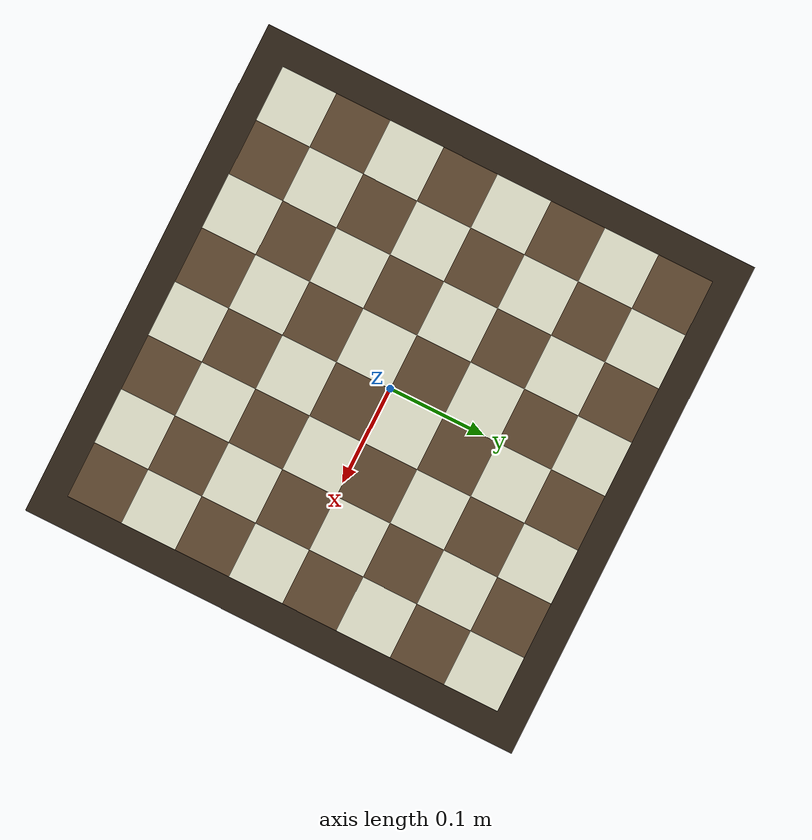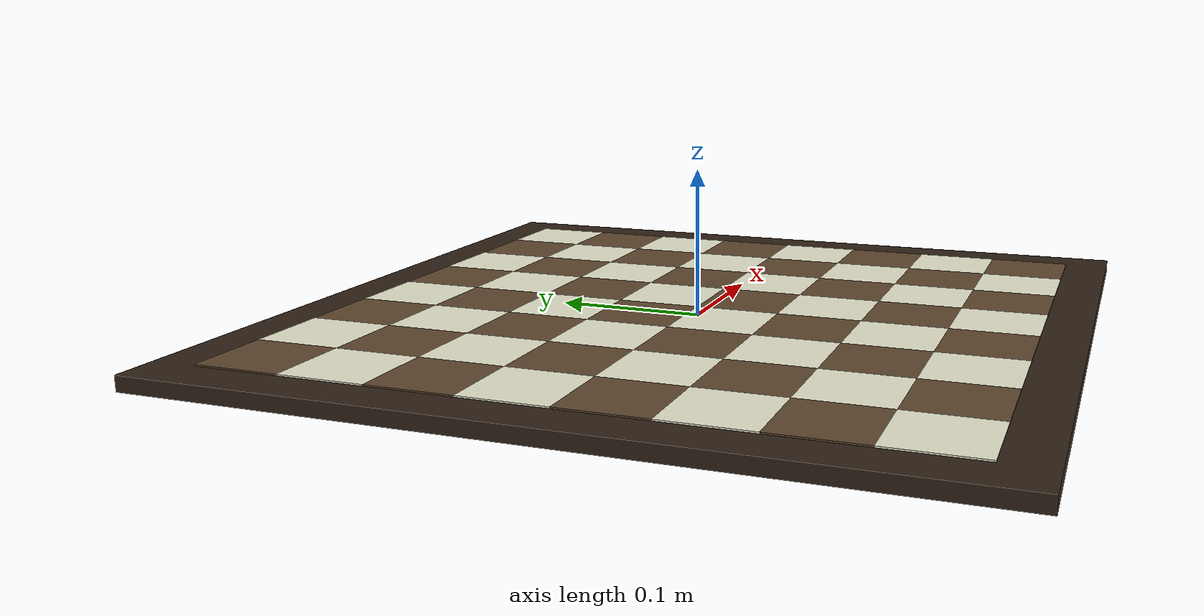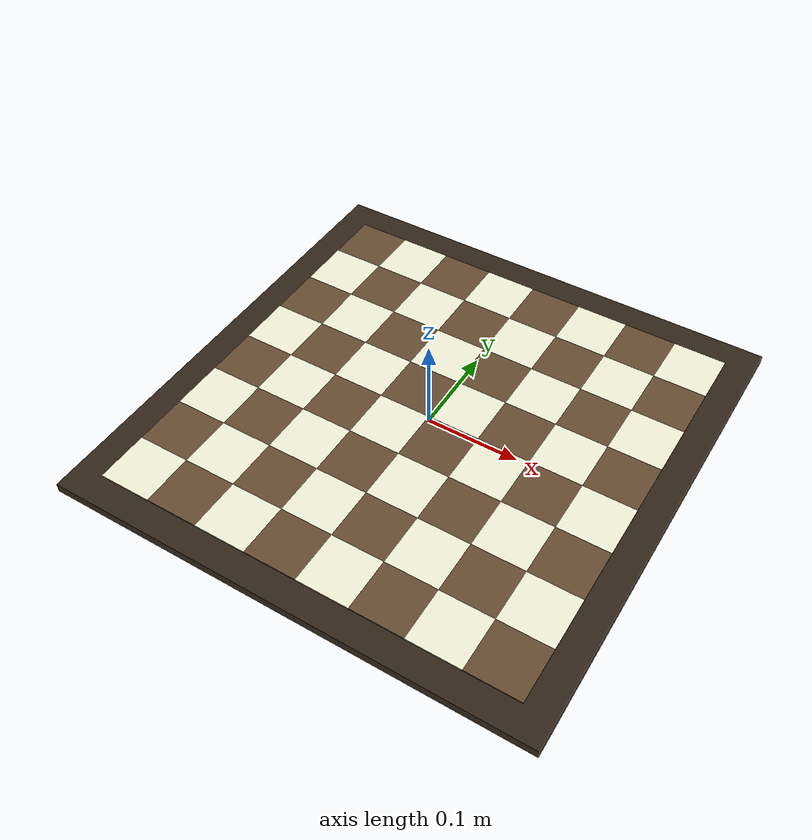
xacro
<?xml version="1.0"?>
<robot xmlns:xacro="http://www.ros.org/wiki/xacro" name="chessboard">

  <!-- Chessboard properties (standard tournament size) -->
  <xacro:property name="square_size" value="0.057"/>  <!-- 57mm squares -->
  <xacro:property name="board_size" value="${8 * square_size}"/>  <!-- 456mm total -->
  <xacro:property name="board_thickness" value="0.01"/>  <!-- 10mm thick -->
  <xacro:property name="border_width" value="0.03"/>  <!-- 30mm border -->
  <xacro:property name="total_size" value="${board_size + 2 * border_width}"/>

  <!-- Materials -->
  <material name="board_light">
    <color rgba="0.95 0.95 0.85 1.0"/>  <!-- Light squares -->
  </material>

  <material name="board_dark">
    <color rgba="0.4 0.3 0.2 1.0"/>  <!-- Dark squares -->
  </material>

  <material name="board_border">
    <color rgba="0.2 0.15 0.1 1.0"/>  <!-- Border -->
  </material>

  <!-- Base board with border -->
  <link name="chessboard_base">
    <inertial>
      <origin xyz="0 0 0" rpy="0 0 0"/>
      <mass value="2.0"/>
      <inertia ixx="0.05" ixy="0" ixz="0" iyy="0.05" iyz="0" izz="0.1"/>
    </inertial>
    <visual>
      <origin xyz="0 0 0" rpy="0 0 0"/>
      <geometry>
        <box size="${total_size} ${total_size} ${board_thickness}"/>
      </geometry>
      <material name="board_border"/>
    </visual>
    <collision>
      <origin xyz="0 0 0" rpy="0 0 0"/>
      <geometry>
        <box size="${total_size} ${total_size} ${board_thickness}"/>
      </geometry>
    </collision>
  </link>

  <!-- Generate chess squares -->
  <xacro:macro name="chess_square" params="row col">
    <xacro:property name="square_name" value="square_${row}_${col}"/>
    <!-- Calculate if square should be light or dark -->
    <xacro:property name="is_light" value="${(row + col) % 2}"/>

    <!-- Position calculation (center the board) -->
    <xacro:property name="x_pos" value="${(col - 3.5) * square_size}"/>
    <xacro:property name="y_pos" value="${(3.5 - row) * square_size}"/>

    <link name="${square_name}">
      <visual>
        <origin xyz="0 0 0" rpy="0 0 0"/>
        <geometry>
          <box size="${square_size} ${square_size} 0.001"/>
        </geometry>
        <material name="${'board_light' if is_light else 'board_dark'}"/>
      </visual>
    </link>

    <joint name="base_to_${square_name}" type="fixed">
      <parent link="chessboard_base"/>
      <child link="${square_name}"/>
      <origin xyz="${x_pos} ${y_pos} ${board_thickness/2 + 0.0005}" rpy="0 0 0"/>
    </joint>
  </xacro:macro>

  <!-- Generate all 64 squares -->
  <xacro:macro name="generate_board">
    <xacro:property name="rows" value="0 1 2 3 4 5 6 7"/>
    <xacro:property name="cols" value="0 1 2 3 4 5 6 7"/>

    <!-- Row 0 (rank 8) -->
    <xacro:chess_square row="0" col="0"/><xacro:chess_square row="0" col="1"/>
    <xacro:chess_square row="0" col="2"/><xacro:chess_square row="0" col="3"/>
    <xacro:chess_square row="0" col="4"/><xacro:chess_square row="0" col="5"/>
    <xacro:chess_square row="0" col="6"/><xacro:chess_square row="0" col="7"/>

    <!-- Row 1 (rank 7) -->
    <xacro:chess_square row="1" col="0"/><xacro:chess_square row="1" col="1"/>
    <xacro:chess_square row="1" col="2"/><xacro:chess_square row="1" col="3"/>
    <xacro:chess_square row="1" col="4"/><xacro:chess_square row="1" col="5"/>
    <xacro:chess_square row="1" col="6"/><xacro:chess_square row="1" col="7"/>

    <!-- Row 2 (rank 6) -->
    <xacro:chess_square row="2" col="0"/><xacro:chess_square row="2" col="1"/>
    <xacro:chess_square row="2" col="2"/><xacro:chess_square row="2" col="3"/>
    <xacro:chess_square row="2" col="4"/><xacro:chess_square row="2" col="5"/>
    <xacro:chess_square row="2" col="6"/><xacro:chess_square row="2" col="7"/>

    <!-- Row 3 (rank 5) -->
    <xacro:chess_square row="3" col="0"/><xacro:chess_square row="3" col="1"/>
    <xacro:chess_square row="3" col="2"/><xacro:chess_square row="3" col="3"/>
    <xacro:chess_square row="3" col="4"/><xacro:chess_square row="3" col="5"/>
    <xacro:chess_square row="3" col="6"/><xacro:chess_square row="3" col="7"/>

    <!-- Row 4 (rank 4) -->
    <xacro:chess_square row="4" col="0"/><xacro:chess_square row="4" col="1"/>
    <xacro:chess_square row="4" col="2"/><xacro:chess_square row="4" col="3"/>
    <xacro:chess_square row="4" col="4"/><xacro:chess_square row="4" col="5"/>
    <xacro:chess_square row="4" col="6"/><xacro:chess_square row="4" col="7"/>

    <!-- Row 5 (rank 3) -->
    <xacro:chess_square row="5" col="0"/><xacro:chess_square row="5" col="1"/>
    <xacro:chess_square row="5" col="2"/><xacro:chess_square row="5" col="3"/>
    <xacro:chess_square row="5" col="4"/><xacro:chess_square row="5" col="5"/>
    <xacro:chess_square row="5" col="6"/><xacro:chess_square row="5" col="7"/>

    <!-- Row 6 (rank 2) -->
    <xacro:chess_square row="6" col="0"/><xacro:chess_square row="6" col="1"/>
    <xacro:chess_square row="6" col="2"/><xacro:chess_square row="6" col="3"/>
    <xacro:chess_square row="6" col="4"/><xacro:chess_square row="6" col="5"/>
    <xacro:chess_square row="6" col="6"/><xacro:chess_square row="6" col="7"/>

    <!-- Row 7 (rank 1) -->
    <xacro:chess_square row="7" col="0"/><xacro:chess_square row="7" col="1"/>
    <xacro:chess_square row="7" col="2"/><xacro:chess_square row="7" col="3"/>
    <xacro:chess_square row="7" col="4"/><xacro:chess_square row="7" col="5"/>
    <xacro:chess_square row="7" col="6"/><xacro:chess_square row="7" col="7"/>
  </xacro:macro>

  <!-- Generate the complete board -->
  <xacro:generate_board/>

  <!-- Add coordinate labels (a-h, 1-8) -->
  <link name="board_labels">
    <visual>
      <origin xyz="0 0 0" rpy="0 0 0"/>
      <geometry>
        <box size="0.001 0.001 0.001"/>  <!-- Invisible placeholder -->
      </geometry>
      <material name="board_border"/>
    </visual>
  </link>

  <joint name="base_to_labels" type="fixed">
    <parent link="chessboard_base"/>
    <child link="board_labels"/>
    <origin xyz="0 0 0" rpy="0 0 0"/>
  </joint>

  <!-- Gazebo properties -->
  <gazebo reference="chessboard_base">
    <material>Gazebo/Wood</material>
    <mu1>0.8</mu1>
    <mu2>0.8</mu2>
    <kp>1000000.0</kp>
    <kd>100.0</kd>
  </gazebo>

</robot>
